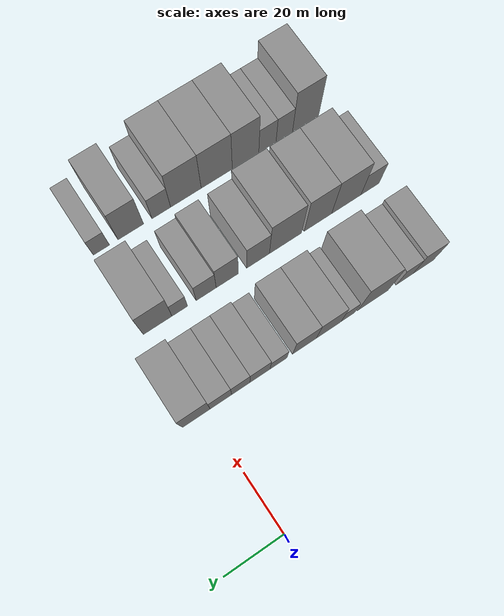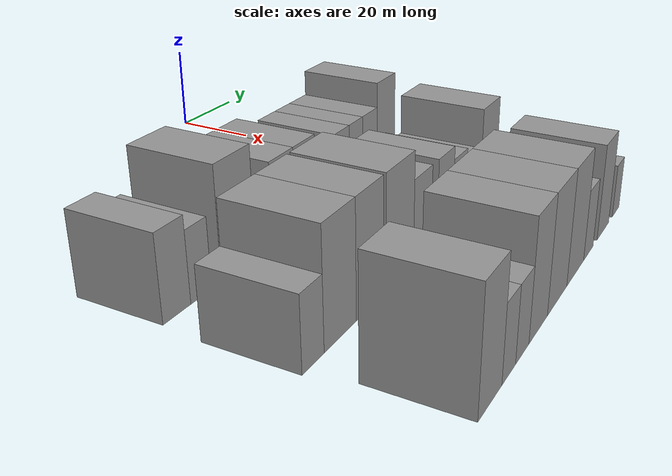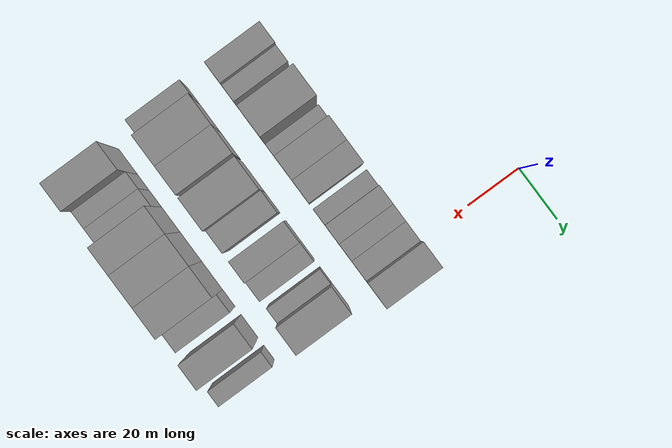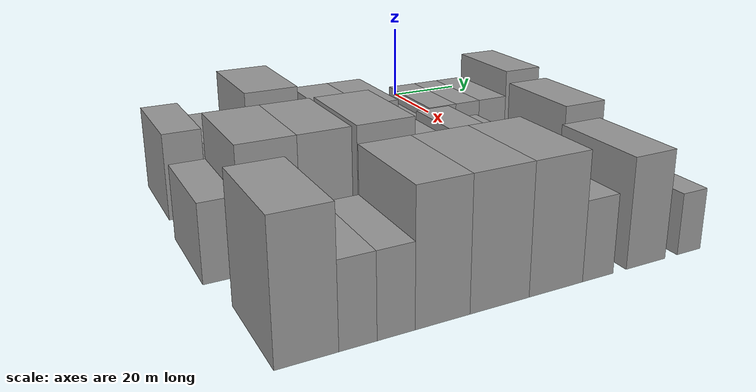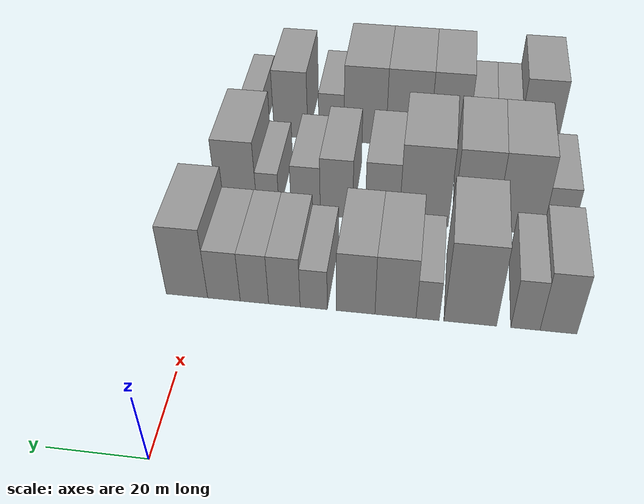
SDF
<sdf version="1.6">
 <world name="default">
  <model name="building_29">
   <static>1</static>
   <pose>50.0000 -77.6888 0 0.000000 0.000000 0.000000</pose>
   <link name="link">
    <pose>0 0 9.00 0 0 0</pose>
    <collision name="collision"><geometry><box><size>20.0000 7.7185 18.0000</size></box></geometry></collision>
    <visual name="visual">
     <cast_shadows>0</cast_shadows>
     <geometry><box><size>20.0000 7.7185 18.0000</size></box></geometry>
     <material>
      <script>
       <uri>model://grey_wall/materials/scripts</uri>
       <uri>model://grey_wall/materials/textures</uri>
       <name>vrc/grey_wall</name>
      </script>
     </material>
    </visual>
   </link>
  </model>
  <model name="building_30">
   <static>1</static>
   <pose>50.0000 -70.7583 0 0.000000 0.000000 0.000000</pose>
   <link name="link">
    <pose>0 0 7.50 0 0 0</pose>
    <collision name="collision"><geometry><box><size>20.0000 6.1424 15.0000</size></box></geometry></collision>
    <visual name="visual">
     <cast_shadows>0</cast_shadows>
     <geometry><box><size>20.0000 6.1424 15.0000</size></box></geometry>
     <material>
      <script>
       <uri>model://grey_wall/materials/scripts</uri>
       <uri>model://grey_wall/materials/textures</uri>
       <name>vrc/grey_wall</name>
      </script>
     </material>
    </visual>
   </link>
  </model>
  <model name="building_31">
   <static>1</static>
   <pose>50.0000 -59.0798 0 0.000000 0.000000 0.000000</pose>
   <link name="link">
    <pose>0 0 12.00 0 0 0</pose>
    <collision name="collision"><geometry><box><size>20.0000 11.2145 24.0000</size></box></geometry></collision>
    <visual name="visual">
     <cast_shadows>0</cast_shadows>
     <geometry><box><size>20.0000 11.2145 24.0000</size></box></geometry>
     <material>
      <script>
       <uri>model://grey_wall/materials/scripts</uri>
       <uri>model://grey_wall/materials/textures</uri>
       <name>vrc/grey_wall</name>
      </script>
     </material>
    </visual>
   </link>
  </model>
  <model name="building_32">
   <static>1</static>
   <pose>50.0000 -49.9756 0 0.000000 0.000000 0.000000</pose>
   <link name="link">
    <pose>0 0 6.00 0 0 0</pose>
    <collision name="collision"><geometry><box><size>20.0000 4.9939 12.0000</size></box></geometry></collision>
    <visual name="visual">
     <cast_shadows>0</cast_shadows>
     <geometry><box><size>20.0000 4.9939 12.0000</size></box></geometry>
     <material>
      <script>
       <uri>model://grey_wall/materials/scripts</uri>
       <uri>model://grey_wall/materials/textures</uri>
       <name>vrc/grey_wall</name>
      </script>
     </material>
    </visual>
   </link>
  </model>
  <model name="building_33">
   <static>1</static>
   <pose>50.0000 -43.0488 0 0.000000 0.000000 0.000000</pose>
   <link name="link">
    <pose>0 0 9.00 0 0 0</pose>
    <collision name="collision"><geometry><box><size>20.0000 8.8598 18.0000</size></box></geometry></collision>
    <visual name="visual">
     <cast_shadows>0</cast_shadows>
     <geometry><box><size>20.0000 8.8598 18.0000</size></box></geometry>
     <material>
      <script>
       <uri>model://grey_wall/materials/scripts</uri>
       <uri>model://grey_wall/materials/textures</uri>
       <name>vrc/grey_wall</name>
      </script>
     </material>
    </visual>
   </link>
  </model>
  <model name="building_34">
   <static>1</static>
   <pose>50.0000 -34.4231 0 0.000000 0.000000 0.000000</pose>
   <link name="link">
    <pose>0 0 9.00 0 0 0</pose>
    <collision name="collision"><geometry><box><size>20.0000 8.3916 18.0000</size></box></geometry></collision>
    <visual name="visual">
     <cast_shadows>0</cast_shadows>
     <geometry><box><size>20.0000 8.3916 18.0000</size></box></geometry>
     <material>
      <script>
       <uri>model://grey_wall/materials/scripts</uri>
       <uri>model://grey_wall/materials/textures</uri>
       <name>vrc/grey_wall</name>
      </script>
     </material>
    </visual>
   </link>
  </model>
  <model name="building_35">
   <static>1</static>
   <pose>50.0000 -25.2457 0 0.000000 0.000000 0.000000</pose>
   <link name="link">
    <pose>0 0 6.00 0 0 0</pose>
    <collision name="collision"><geometry><box><size>20.0000 5.9630 12.0000</size></box></geometry></collision>
    <visual name="visual">
     <cast_shadows>0</cast_shadows>
     <geometry><box><size>20.0000 5.9630 12.0000</size></box></geometry>
     <material>
      <script>
       <uri>model://grey_wall/materials/scripts</uri>
       <uri>model://grey_wall/materials/textures</uri>
       <name>vrc/grey_wall</name>
      </script>
     </material>
    </visual>
   </link>
  </model>
  <model name="building_36">
   <static>1</static>
   <pose>50.0000 -18.7778 0 0.000000 0.000000 0.000000</pose>
   <link name="link">
    <pose>0 0 7.50 0 0 0</pose>
    <collision name="collision"><geometry><box><size>20.0000 6.9728 15.0000</size></box></geometry></collision>
    <visual name="visual">
     <cast_shadows>0</cast_shadows>
     <geometry><box><size>20.0000 6.9728 15.0000</size></box></geometry>
     <material>
      <script>
       <uri>model://grey_wall/materials/scripts</uri>
       <uri>model://grey_wall/materials/textures</uri>
       <name>vrc/grey_wall</name>
      </script>
     </material>
    </visual>
   </link>
  </model>
  <model name="building_37">
   <static>1</static>
   <pose>50.0000 -12.1373 0 0.000000 0.000000 0.000000</pose>
   <link name="link">
    <pose>0 0 7.50 0 0 0</pose>
    <collision name="collision"><geometry><box><size>20.0000 6.3082 15.0000</size></box></geometry></collision>
    <visual name="visual">
     <cast_shadows>0</cast_shadows>
     <geometry><box><size>20.0000 6.3082 15.0000</size></box></geometry>
     <material>
      <script>
       <uri>model://grey_wall/materials/scripts</uri>
       <uri>model://grey_wall/materials/textures</uri>
       <name>vrc/grey_wall</name>
      </script>
     </material>
    </visual>
   </link>
  </model>
  <model name="building_38">
   <static>1</static>
   <pose>50.0000 -5.3247 0 0.000000 0.000000 0.000000</pose>
   <link name="link">
    <pose>0 0 7.50 0 0 0</pose>
    <collision name="collision"><geometry><box><size>20.0000 7.3171 15.0000</size></box></geometry></collision>
    <visual name="visual">
     <cast_shadows>0</cast_shadows>
     <geometry><box><size>20.0000 7.3171 15.0000</size></box></geometry>
     <material>
      <script>
       <uri>model://grey_wall/materials/scripts</uri>
       <uri>model://grey_wall/materials/textures</uri>
       <name>vrc/grey_wall</name>
      </script>
     </material>
    </visual>
   </link>
  </model>
  <model name="building_39">
   <static>1</static>
   <pose>50.0000 3.0005 0 0.000000 0.000000 0.000000</pose>
   <link name="link">
    <pose>0 0 10.50 0 0 0</pose>
    <collision name="collision"><geometry><box><size>20.0000 9.3334 21.0000</size></box></geometry></collision>
    <visual name="visual">
     <cast_shadows>0</cast_shadows>
     <geometry><box><size>20.0000 9.3334 21.0000</size></box></geometry>
     <material>
      <script>
       <uri>model://grey_wall/materials/scripts</uri>
       <uri>model://grey_wall/materials/textures</uri>
       <name>vrc/grey_wall</name>
      </script>
     </material>
    </visual>
   </link>
  </model>
  <model name="building_103">
   <static>1</static>
   <pose>79.0000 -79.0832 0 0.000000 0.000000 0.000000</pose>
   <link name="link">
    <pose>0 0 7.50 0 0 0</pose>
    <collision name="collision"><geometry><box><size>20.0000 6.8829 15.0000</size></box></geometry></collision>
    <visual name="visual">
     <cast_shadows>0</cast_shadows>
     <geometry><box><size>20.0000 6.8829 15.0000</size></box></geometry>
     <material>
      <script>
       <uri>model://grey_wall/materials/scripts</uri>
       <uri>model://grey_wall/materials/textures</uri>
       <name>vrc/grey_wall</name>
      </script>
     </material>
    </visual>
   </link>
  </model>
  <model name="building_104">
   <static>1</static>
   <pose>79.0000 -70.1405 0 0.000000 0.000000 0.000000</pose>
   <link name="link">
    <pose>0 0 12.00 0 0 0</pose>
    <collision name="collision"><geometry><box><size>20.0000 11.0026 24.0000</size></box></geometry></collision>
    <visual name="visual">
     <cast_shadows>0</cast_shadows>
     <geometry><box><size>20.0000 11.0026 24.0000</size></box></geometry>
     <material>
      <script>
       <uri>model://grey_wall/materials/scripts</uri>
       <uri>model://grey_wall/materials/textures</uri>
       <name>vrc/grey_wall</name>
      </script>
     </material>
    </visual>
   </link>
  </model>
  <model name="building_105">
   <static>1</static>
   <pose>79.0000 -59.5394 0 0.000000 0.000000 0.000000</pose>
   <link name="link">
    <pose>0 0 12.00 0 0 0</pose>
    <collision name="collision"><geometry><box><size>20.0000 10.1994 24.0000</size></box></geometry></collision>
    <visual name="visual">
     <cast_shadows>0</cast_shadows>
     <geometry><box><size>20.0000 10.1994 24.0000</size></box></geometry>
     <material>
      <script>
       <uri>model://grey_wall/materials/scripts</uri>
       <uri>model://grey_wall/materials/textures</uri>
       <name>vrc/grey_wall</name>
      </script>
     </material>
    </visual>
   </link>
  </model>
  <model name="building_106">
   <static>1</static>
   <pose>79.0000 -47.5764 0 0.000000 0.000000 0.000000</pose>
   <link name="link">
    <pose>0 0 12.00 0 0 0</pose>
    <collision name="collision"><geometry><box><size>20.0000 11.7266 24.0000</size></box></geometry></collision>
    <visual name="visual">
     <cast_shadows>0</cast_shadows>
     <geometry><box><size>20.0000 11.7266 24.0000</size></box></geometry>
     <material>
      <script>
       <uri>model://grey_wall/materials/scripts</uri>
       <uri>model://grey_wall/materials/textures</uri>
       <name>vrc/grey_wall</name>
      </script>
     </material>
    </visual>
   </link>
  </model>
  <model name="building_107">
   <static>1</static>
   <pose>79.0000 -37.6157 0 0.000000 0.000000 0.000000</pose>
   <link name="link">
    <pose>0 0 9.00 0 0 0</pose>
    <collision name="collision"><geometry><box><size>20.0000 8.1949 18.0000</size></box></geometry></collision>
    <visual name="visual">
     <cast_shadows>0</cast_shadows>
     <geometry><box><size>20.0000 8.1949 18.0000</size></box></geometry>
     <material>
      <script>
       <uri>model://grey_wall/materials/scripts</uri>
       <uri>model://grey_wall/materials/textures</uri>
       <name>vrc/grey_wall</name>
      </script>
     </material>
    </visual>
   </link>
  </model>
  <model name="building_108">
   <static>1</static>
   <pose>79.0000 -26.5701 0 0.000000 0.000000 0.000000</pose>
   <link name="link">
    <pose>0 0 9.00 0 0 0</pose>
    <collision name="collision"><geometry><box><size>20.0000 7.8962 18.0000</size></box></geometry></collision>
    <visual name="visual">
     <cast_shadows>0</cast_shadows>
     <geometry><box><size>20.0000 7.8962 18.0000</size></box></geometry>
     <material>
      <script>
       <uri>model://grey_wall/materials/scripts</uri>
       <uri>model://grey_wall/materials/textures</uri>
       <name>vrc/grey_wall</name>
      </script>
     </material>
    </visual>
   </link>
  </model>
  <model name="building_109">
   <static>1</static>
   <pose>79.0000 -19.0780 0 0.000000 0.000000 0.000000</pose>
   <link name="link">
    <pose>0 0 7.50 0 0 0</pose>
    <collision name="collision"><geometry><box><size>20.0000 7.0879 15.0000</size></box></geometry></collision>
    <visual name="visual">
     <cast_shadows>0</cast_shadows>
     <geometry><box><size>20.0000 7.0879 15.0000</size></box></geometry>
     <material>
      <script>
       <uri>model://grey_wall/materials/scripts</uri>
       <uri>model://grey_wall/materials/textures</uri>
       <name>vrc/grey_wall</name>
      </script>
     </material>
    </visual>
   </link>
  </model>
  <model name="building_110">
   <static>1</static>
   <pose>79.0000 -9.7975 0 0.000000 0.000000 0.000000</pose>
   <link name="link">
    <pose>0 0 6.00 0 0 0</pose>
    <collision name="collision"><geometry><box><size>20.0000 5.4732 12.0000</size></box></geometry></collision>
    <visual name="visual">
     <cast_shadows>0</cast_shadows>
     <geometry><box><size>20.0000 5.4732 12.0000</size></box></geometry>
     <material>
      <script>
       <uri>model://grey_wall/materials/scripts</uri>
       <uri>model://grey_wall/materials/textures</uri>
       <name>vrc/grey_wall</name>
      </script>
     </material>
    </visual>
   </link>
  </model>
  <model name="building_111">
   <static>1</static>
   <pose>79.0000 -2.1053 0 0.000000 0.000000 0.000000</pose>
   <link name="link">
    <pose>0 0 10.50 0 0 0</pose>
    <collision name="collision"><geometry><box><size>20.0000 9.9112 21.0000</size></box></geometry></collision>
    <visual name="visual">
     <cast_shadows>0</cast_shadows>
     <geometry><box><size>20.0000 9.9112 21.0000</size></box></geometry>
     <material>
      <script>
       <uri>model://grey_wall/materials/scripts</uri>
       <uri>model://grey_wall/materials/textures</uri>
       <name>vrc/grey_wall</name>
      </script>
     </material>
    </visual>
   </link>
  </model>
  <model name="building_182">
   <static>1</static>
   <pose>108.0000 -75.1125 0 0.000000 0.000000 0.000000</pose>
   <link name="link">
    <pose>0 0 12.00 0 0 0</pose>
    <collision name="collision"><geometry><box><size>20.0000 10.0182 24.0000</size></box></geometry></collision>
    <visual name="visual">
     <cast_shadows>0</cast_shadows>
     <geometry><box><size>20.0000 10.0182 24.0000</size></box></geometry>
     <material>
      <script>
       <uri>model://grey_wall/materials/scripts</uri>
       <uri>model://grey_wall/materials/textures</uri>
       <name>vrc/grey_wall</name>
      </script>
     </material>
    </visual>
   </link>
  </model>
  <model name="building_183">
   <static>1</static>
   <pose>108.0000 -66.9826 0 0.000000 0.000000 0.000000</pose>
   <link name="link">
    <pose>0 0 7.50 0 0 0</pose>
    <collision name="collision"><geometry><box><size>20.0000 6.2416 15.0000</size></box></geometry></collision>
    <visual name="visual">
     <cast_shadows>0</cast_shadows>
     <geometry><box><size>20.0000 6.2416 15.0000</size></box></geometry>
     <material>
      <script>
       <uri>model://grey_wall/materials/scripts</uri>
       <uri>model://grey_wall/materials/textures</uri>
       <name>vrc/grey_wall</name>
      </script>
     </material>
    </visual>
   </link>
  </model>
  <model name="building_184">
   <static>1</static>
   <pose>108.0000 -60.6152 0 0.000000 0.000000 0.000000</pose>
   <link name="link">
    <pose>0 0 7.50 0 0 0</pose>
    <collision name="collision"><geometry><box><size>20.0000 6.4931 15.0000</size></box></geometry></collision>
    <visual name="visual">
     <cast_shadows>0</cast_shadows>
     <geometry><box><size>20.0000 6.4931 15.0000</size></box></geometry>
     <material>
      <script>
       <uri>model://grey_wall/materials/scripts</uri>
       <uri>model://grey_wall/materials/textures</uri>
       <name>vrc/grey_wall</name>
      </script>
     </material>
    </visual>
   </link>
  </model>
  <model name="building_185">
   <static>1</static>
   <pose>108.0000 -52.4292 0 0.000000 0.000000 0.000000</pose>
   <link name="link">
    <pose>0 0 12.00 0 0 0</pose>
    <collision name="collision"><geometry><box><size>20.0000 9.8790 24.0000</size></box></geometry></collision>
    <visual name="visual">
     <cast_shadows>0</cast_shadows>
     <geometry><box><size>20.0000 9.8790 24.0000</size></box></geometry>
     <material>
      <script>
       <uri>model://grey_wall/materials/scripts</uri>
       <uri>model://grey_wall/materials/textures</uri>
       <name>vrc/grey_wall</name>
      </script>
     </material>
    </visual>
   </link>
  </model>
  <model name="building_186">
   <static>1</static>
   <pose>108.0000 -41.7598 0 0.000000 0.000000 0.000000</pose>
   <link name="link">
    <pose>0 0 12.00 0 0 0</pose>
    <collision name="collision"><geometry><box><size>20.0000 11.4597 24.0000</size></box></geometry></collision>
    <visual name="visual">
     <cast_shadows>0</cast_shadows>
     <geometry><box><size>20.0000 11.4597 24.0000</size></box></geometry>
     <material>
      <script>
       <uri>model://grey_wall/materials/scripts</uri>
       <uri>model://grey_wall/materials/textures</uri>
       <name>vrc/grey_wall</name>
      </script>
     </material>
    </visual>
   </link>
  </model>
  <model name="building_187">
   <static>1</static>
   <pose>108.0000 -30.4761 0 0.000000 0.000000 0.000000</pose>
   <link name="link">
    <pose>0 0 12.00 0 0 0</pose>
    <collision name="collision"><geometry><box><size>20.0000 11.1079 24.0000</size></box></geometry></collision>
    <visual name="visual">
     <cast_shadows>0</cast_shadows>
     <geometry><box><size>20.0000 11.1079 24.0000</size></box></geometry>
     <material>
      <script>
       <uri>model://grey_wall/materials/scripts</uri>
       <uri>model://grey_wall/materials/textures</uri>
       <name>vrc/grey_wall</name>
      </script>
     </material>
    </visual>
   </link>
  </model>
  <model name="building_188">
   <static>1</static>
   <pose>108.0000 -21.5544 0 0.000000 0.000000 0.000000</pose>
   <link name="link">
    <pose>0 0 7.50 0 0 0</pose>
    <collision name="collision"><geometry><box><size>20.0000 6.7353 15.0000</size></box></geometry></collision>
    <visual name="visual">
     <cast_shadows>0</cast_shadows>
     <geometry><box><size>20.0000 6.7353 15.0000</size></box></geometry>
     <material>
      <script>
       <uri>model://grey_wall/materials/scripts</uri>
       <uri>model://grey_wall/materials/textures</uri>
       <name>vrc/grey_wall</name>
      </script>
     </material>
    </visual>
   </link>
  </model>
  <model name="building_189">
   <static>1</static>
   <pose>108.0000 -10.6394 0 0.000000 0.000000 0.000000</pose>
   <link name="link">
    <pose>0 0 10.50 0 0 0</pose>
    <collision name="collision"><geometry><box><size>20.0000 9.0947 21.0000</size></box></geometry></collision>
    <visual name="visual">
     <cast_shadows>0</cast_shadows>
     <geometry><box><size>20.0000 9.0947 21.0000</size></box></geometry>
     <material>
      <script>
       <uri>model://grey_wall/materials/scripts</uri>
       <uri>model://grey_wall/materials/textures</uri>
       <name>vrc/grey_wall</name>
      </script>
     </material>
    </visual>
   </link>
  </model>
  <model name="building_190">
   <static>1</static>
   <pose>108.0000 -0.2509 0 0.000000 0.000000 0.000000</pose>
   <link name="link">
    <pose>0 0 6.00 0 0 0</pose>
    <collision name="collision"><geometry><box><size>20.0000 5.6823 12.0000</size></box></geometry></collision>
    <visual name="visual">
     <cast_shadows>0</cast_shadows>
     <geometry><box><size>20.0000 5.6823 12.0000</size></box></geometry>
     <material>
      <script>
       <uri>model://grey_wall/materials/scripts</uri>
       <uri>model://grey_wall/materials/textures</uri>
       <name>vrc/grey_wall</name>
      </script>
     </material>
    </visual>
   </link>
  </model>
 </world>
</sdf>
